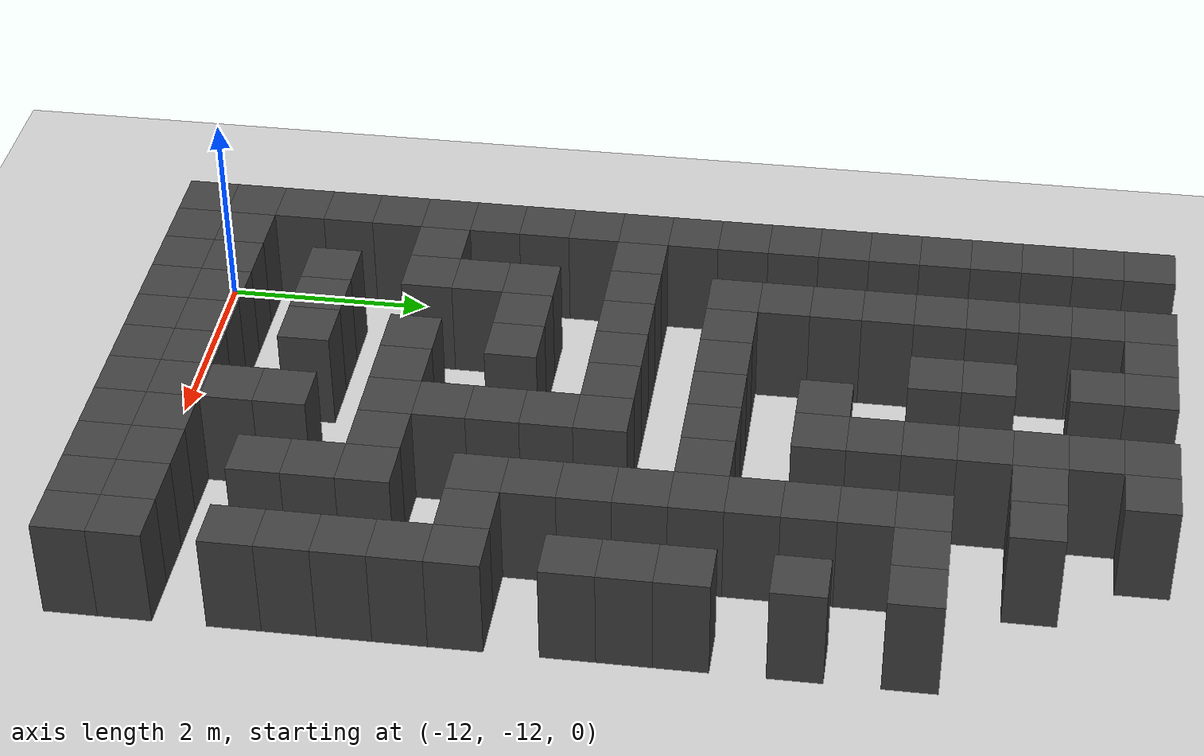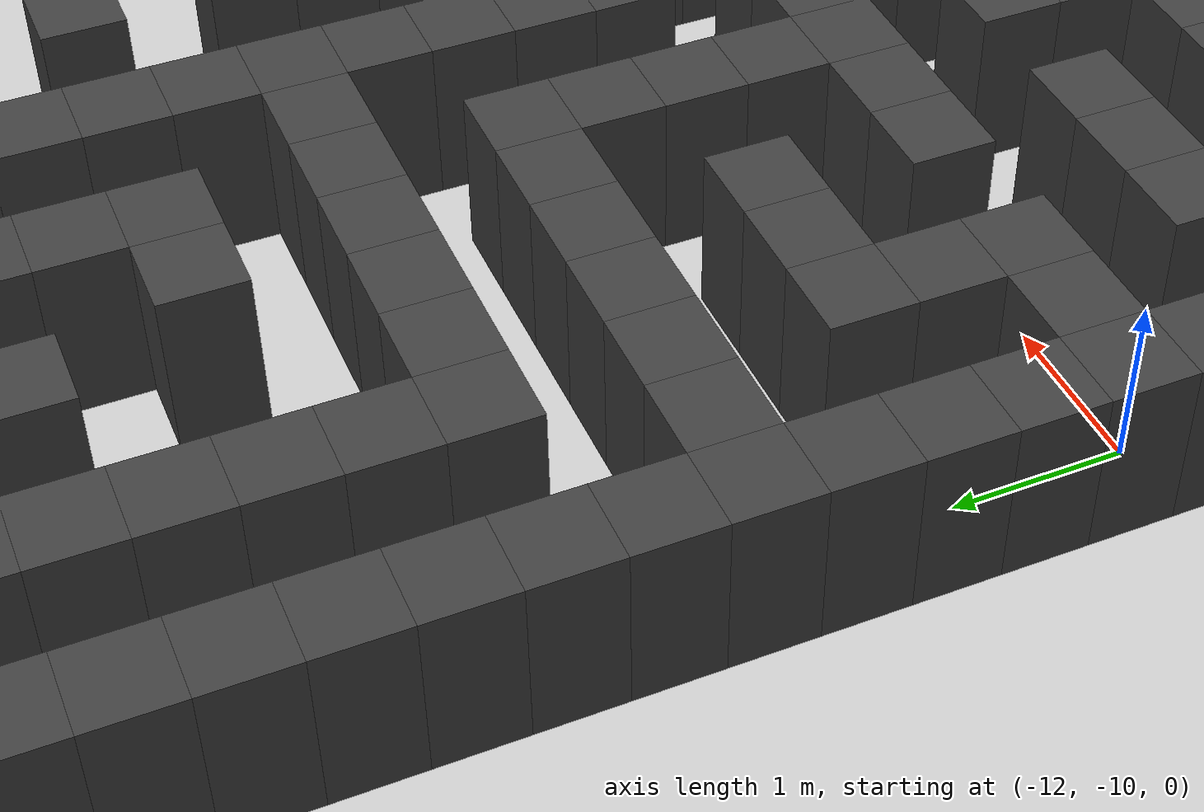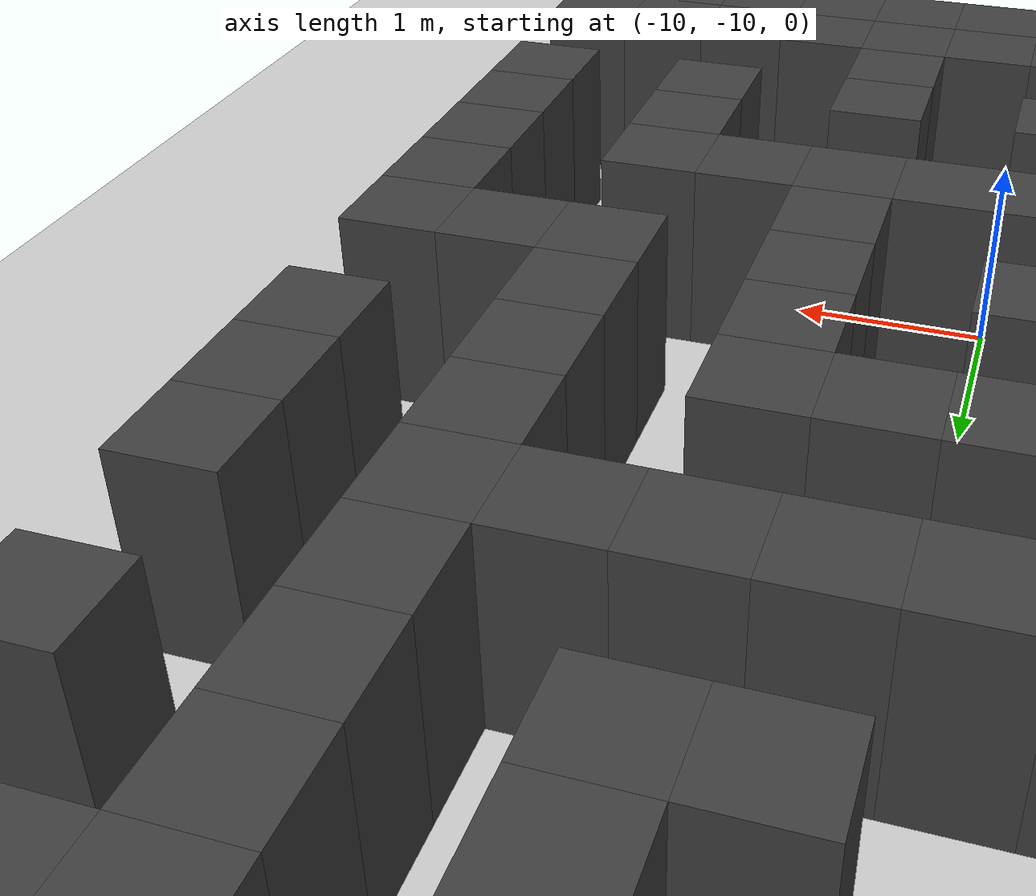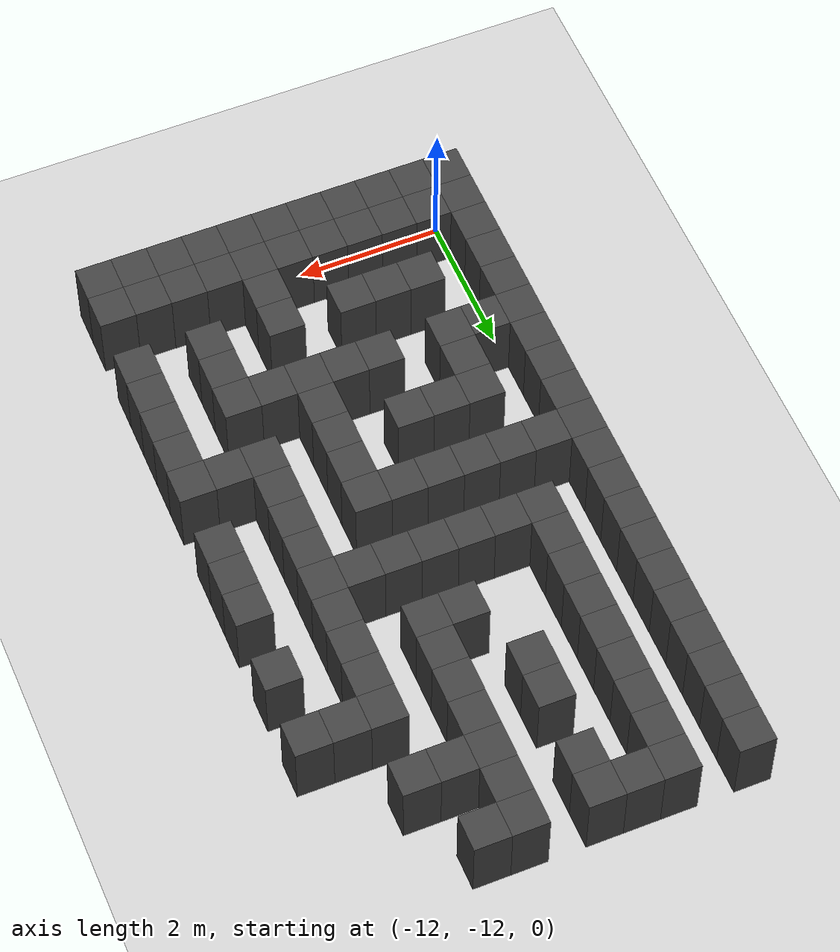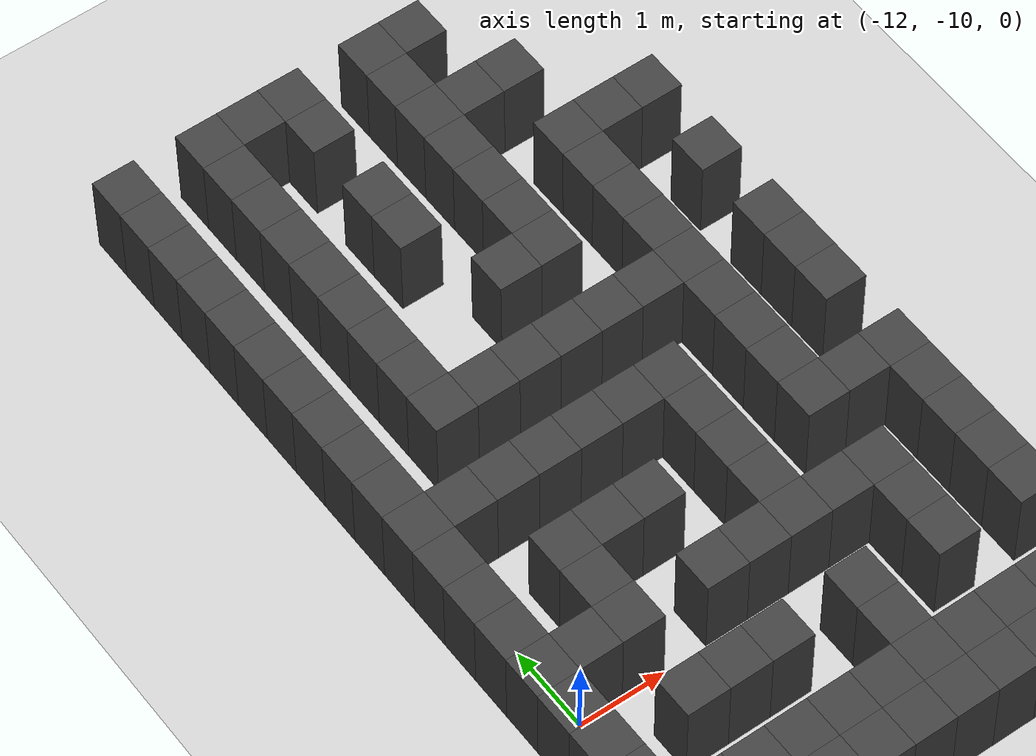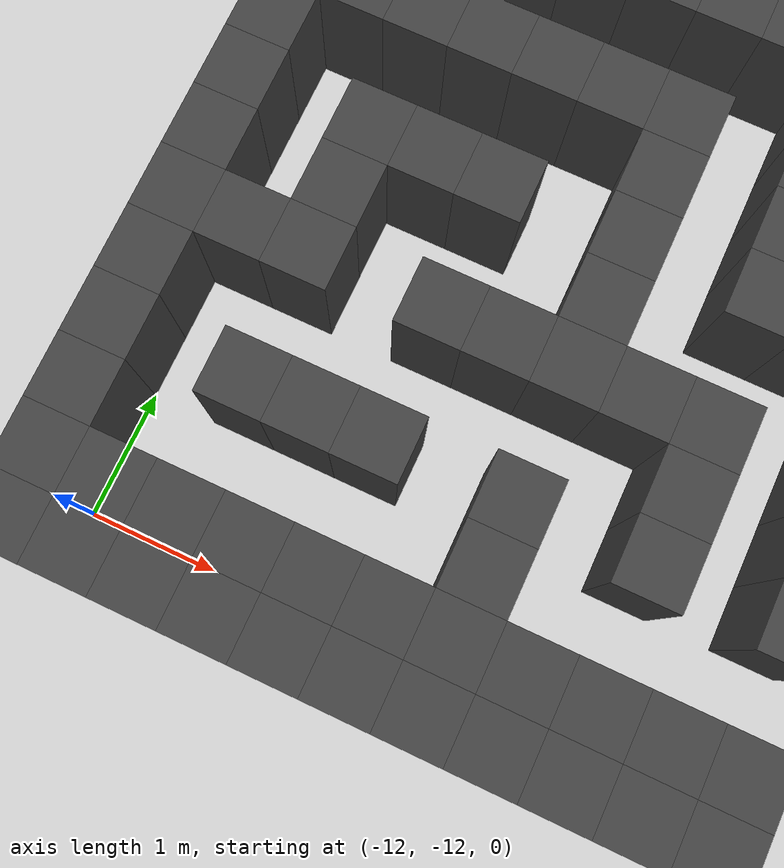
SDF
<sdf version="1.7">
 <world name="map_18814">
  <model name="ground_plane">
   <static>true</static>
   <link name="link">
    <collision name="collision">
     <geometry><plane><normal>0 0 1</normal><size>200 200</size></plane></geometry>
    </collision>
    <visual name="visual">
     <geometry><plane><normal>0 0 1</normal><size>200 200</size></plane></geometry>
     <material><ambient>0.8 0.8 0.8 1</ambient><diffuse>0.8 0.8 0.8 1</diffuse></material>
    </visual>
   </link>
  </model>
  <model name="maze_environment">
   <static>true</static>
   <link name="wall_763">
    <pose>-12.250 -2.750 0.500 0 0 0</pose>
    <collision name="col"><geometry><box><size>0.5 0.5 1.0</size></box></geometry></collision>
    <visual name="vis">
     <geometry><box><size>0.5 0.5 1.0</size></box></geometry>
     <material><ambient>0.15 0.15 0.15 1</ambient><diffuse>0.25 0.25 0.25 1</diffuse></material>
    </visual>
   </link>
   <link name="wall_764">
    <pose>-11.250 -2.750 0.500 0 0 0</pose>
    <collision name="col"><geometry><box><size>0.5 0.5 1.0</size></box></geometry></collision>
    <visual name="vis">
     <geometry><box><size>0.5 0.5 1.0</size></box></geometry>
     <material><ambient>0.15 0.15 0.15 1</ambient><diffuse>0.25 0.25 0.25 1</diffuse></material>
    </visual>
   </link>
   <link name="wall_765">
    <pose>-10.750 -2.750 0.500 0 0 0</pose>
    <collision name="col"><geometry><box><size>0.5 0.5 1.0</size></box></geometry></collision>
    <visual name="vis">
     <geometry><box><size>0.5 0.5 1.0</size></box></geometry>
     <material><ambient>0.15 0.15 0.15 1</ambient><diffuse>0.25 0.25 0.25 1</diffuse></material>
    </visual>
   </link>
   <link name="wall_766">
    <pose>-10.250 -2.750 0.500 0 0 0</pose>
    <collision name="col"><geometry><box><size>0.5 0.5 1.0</size></box></geometry></collision>
    <visual name="vis">
     <geometry><box><size>0.5 0.5 1.0</size></box></geometry>
     <material><ambient>0.15 0.15 0.15 1</ambient><diffuse>0.25 0.25 0.25 1</diffuse></material>
    </visual>
   </link>
   <link name="wall_767">
    <pose>-9.250 -2.750 0.500 0 0 0</pose>
    <collision name="col"><geometry><box><size>0.5 0.5 1.0</size></box></geometry></collision>
    <visual name="vis">
     <geometry><box><size>0.5 0.5 1.0</size></box></geometry>
     <material><ambient>0.15 0.15 0.15 1</ambient><diffuse>0.25 0.25 0.25 1</diffuse></material>
    </visual>
   </link>
   <link name="wall_768">
    <pose>-8.750 -2.750 0.500 0 0 0</pose>
    <collision name="col"><geometry><box><size>0.5 0.5 1.0</size></box></geometry></collision>
    <visual name="vis">
     <geometry><box><size>0.5 0.5 1.0</size></box></geometry>
     <material><ambient>0.15 0.15 0.15 1</ambient><diffuse>0.25 0.25 0.25 1</diffuse></material>
    </visual>
   </link>
   <link name="wall_799">
    <pose>-12.250 -3.250 0.500 0 0 0</pose>
    <collision name="col"><geometry><box><size>0.5 0.5 1.0</size></box></geometry></collision>
    <visual name="vis">
     <geometry><box><size>0.5 0.5 1.0</size></box></geometry>
     <material><ambient>0.15 0.15 0.15 1</ambient><diffuse>0.25 0.25 0.25 1</diffuse></material>
    </visual>
   </link>
   <link name="wall_800">
    <pose>-11.250 -3.250 0.500 0 0 0</pose>
    <collision name="col"><geometry><box><size>0.5 0.5 1.0</size></box></geometry></collision>
    <visual name="vis">
     <geometry><box><size>0.5 0.5 1.0</size></box></geometry>
     <material><ambient>0.15 0.15 0.15 1</ambient><diffuse>0.25 0.25 0.25 1</diffuse></material>
    </visual>
   </link>
   <link name="wall_801">
    <pose>-10.250 -3.250 0.500 0 0 0</pose>
    <collision name="col"><geometry><box><size>0.5 0.5 1.0</size></box></geometry></collision>
    <visual name="vis">
     <geometry><box><size>0.5 0.5 1.0</size></box></geometry>
     <material><ambient>0.15 0.15 0.15 1</ambient><diffuse>0.25 0.25 0.25 1</diffuse></material>
    </visual>
   </link>
   <link name="wall_802">
    <pose>-9.250 -3.250 0.500 0 0 0</pose>
    <collision name="col"><geometry><box><size>0.5 0.5 1.0</size></box></geometry></collision>
    <visual name="vis">
     <geometry><box><size>0.5 0.5 1.0</size></box></geometry>
     <material><ambient>0.15 0.15 0.15 1</ambient><diffuse>0.25 0.25 0.25 1</diffuse></material>
    </visual>
   </link>
   <link name="wall_814">
    <pose>-12.250 -3.750 0.500 0 0 0</pose>
    <collision name="col"><geometry><box><size>0.5 0.5 1.0</size></box></geometry></collision>
    <visual name="vis">
     <geometry><box><size>0.5 0.5 1.0</size></box></geometry>
     <material><ambient>0.15 0.15 0.15 1</ambient><diffuse>0.25 0.25 0.25 1</diffuse></material>
    </visual>
   </link>
   <link name="wall_815">
    <pose>-11.250 -3.750 0.500 0 0 0</pose>
    <collision name="col"><geometry><box><size>0.5 0.5 1.0</size></box></geometry></collision>
    <visual name="vis">
     <geometry><box><size>0.5 0.5 1.0</size></box></geometry>
     <material><ambient>0.15 0.15 0.15 1</ambient><diffuse>0.25 0.25 0.25 1</diffuse></material>
    </visual>
   </link>
   <link name="wall_816">
    <pose>-9.250 -3.750 0.500 0 0 0</pose>
    <collision name="col"><geometry><box><size>0.5 0.5 1.0</size></box></geometry></collision>
    <visual name="vis">
     <geometry><box><size>0.5 0.5 1.0</size></box></geometry>
     <material><ambient>0.15 0.15 0.15 1</ambient><diffuse>0.25 0.25 0.25 1</diffuse></material>
    </visual>
   </link>
   <link name="wall_817">
    <pose>-8.750 -3.750 0.500 0 0 0</pose>
    <collision name="col"><geometry><box><size>0.5 0.5 1.0</size></box></geometry></collision>
    <visual name="vis">
     <geometry><box><size>0.5 0.5 1.0</size></box></geometry>
     <material><ambient>0.15 0.15 0.15 1</ambient><diffuse>0.25 0.25 0.25 1</diffuse></material>
    </visual>
   </link>
   <link name="wall_818">
    <pose>-8.250 -3.750 0.500 0 0 0</pose>
    <collision name="col"><geometry><box><size>0.5 0.5 1.0</size></box></geometry></collision>
    <visual name="vis">
     <geometry><box><size>0.5 0.5 1.0</size></box></geometry>
     <material><ambient>0.15 0.15 0.15 1</ambient><diffuse>0.25 0.25 0.25 1</diffuse></material>
    </visual>
   </link>
   <link name="wall_848">
    <pose>-12.250 -4.250 0.500 0 0 0</pose>
    <collision name="col"><geometry><box><size>0.5 0.5 1.0</size></box></geometry></collision>
    <visual name="vis">
     <geometry><box><size>0.5 0.5 1.0</size></box></geometry>
     <material><ambient>0.15 0.15 0.15 1</ambient><diffuse>0.25 0.25 0.25 1</diffuse></material>
    </visual>
   </link>
   <link name="wall_849">
    <pose>-11.250 -4.250 0.500 0 0 0</pose>
    <collision name="col"><geometry><box><size>0.5 0.5 1.0</size></box></geometry></collision>
    <visual name="vis">
     <geometry><box><size>0.5 0.5 1.0</size></box></geometry>
     <material><ambient>0.15 0.15 0.15 1</ambient><diffuse>0.25 0.25 0.25 1</diffuse></material>
    </visual>
   </link>
   <link name="wall_850">
    <pose>-10.250 -4.250 0.500 0 0 0</pose>
    <collision name="col"><geometry><box><size>0.5 0.5 1.0</size></box></geometry></collision>
    <visual name="vis">
     <geometry><box><size>0.5 0.5 1.0</size></box></geometry>
     <material><ambient>0.15 0.15 0.15 1</ambient><diffuse>0.25 0.25 0.25 1</diffuse></material>
    </visual>
   </link>
   <link name="wall_851">
    <pose>-9.250 -4.250 0.500 0 0 0</pose>
    <collision name="col"><geometry><box><size>0.5 0.5 1.0</size></box></geometry></collision>
    <visual name="vis">
     <geometry><box><size>0.5 0.5 1.0</size></box></geometry>
     <material><ambient>0.15 0.15 0.15 1</ambient><diffuse>0.25 0.25 0.25 1</diffuse></material>
    </visual>
   </link>
   <link name="wall_865">
    <pose>-12.250 -4.750 0.500 0 0 0</pose>
    <collision name="col"><geometry><box><size>0.5 0.5 1.0</size></box></geometry></collision>
    <visual name="vis">
     <geometry><box><size>0.5 0.5 1.0</size></box></geometry>
     <material><ambient>0.15 0.15 0.15 1</ambient><diffuse>0.25 0.25 0.25 1</diffuse></material>
    </visual>
   </link>
   <link name="wall_866">
    <pose>-11.250 -4.750 0.500 0 0 0</pose>
    <collision name="col"><geometry><box><size>0.5 0.5 1.0</size></box></geometry></collision>
    <visual name="vis">
     <geometry><box><size>0.5 0.5 1.0</size></box></geometry>
     <material><ambient>0.15 0.15 0.15 1</ambient><diffuse>0.25 0.25 0.25 1</diffuse></material>
    </visual>
   </link>
   <link name="wall_867">
    <pose>-10.250 -4.750 0.500 0 0 0</pose>
    <collision name="col"><geometry><box><size>0.5 0.5 1.0</size></box></geometry></collision>
    <visual name="vis">
     <geometry><box><size>0.5 0.5 1.0</size></box></geometry>
     <material><ambient>0.15 0.15 0.15 1</ambient><diffuse>0.25 0.25 0.25 1</diffuse></material>
    </visual>
   </link>
   <link name="wall_868">
    <pose>-9.250 -4.750 0.500 0 0 0</pose>
    <collision name="col"><geometry><box><size>0.5 0.5 1.0</size></box></geometry></collision>
    <visual name="vis">
     <geometry><box><size>0.5 0.5 1.0</size></box></geometry>
     <material><ambient>0.15 0.15 0.15 1</ambient><diffuse>0.25 0.25 0.25 1</diffuse></material>
    </visual>
   </link>
   <link name="wall_869">
    <pose>-8.250 -4.750 0.500 0 0 0</pose>
    <collision name="col"><geometry><box><size>0.5 0.5 1.0</size></box></geometry></collision>
    <visual name="vis">
     <geometry><box><size>0.5 0.5 1.0</size></box></geometry>
     <material><ambient>0.15 0.15 0.15 1</ambient><diffuse>0.25 0.25 0.25 1</diffuse></material>
    </visual>
   </link>
   <link name="wall_870">
    <pose>-7.750 -4.750 0.500 0 0 0</pose>
    <collision name="col"><geometry><box><size>0.5 0.5 1.0</size></box></geometry></collision>
    <visual name="vis">
     <geometry><box><size>0.5 0.5 1.0</size></box></geometry>
     <material><ambient>0.15 0.15 0.15 1</ambient><diffuse>0.25 0.25 0.25 1</diffuse></material>
    </visual>
   </link>
   <link name="wall_871">
    <pose>-7.250 -4.750 0.500 0 0 0</pose>
    <collision name="col"><geometry><box><size>0.5 0.5 1.0</size></box></geometry></collision>
    <visual name="vis">
     <geometry><box><size>0.5 0.5 1.0</size></box></geometry>
     <material><ambient>0.15 0.15 0.15 1</ambient><diffuse>0.25 0.25 0.25 1</diffuse></material>
    </visual>
   </link>
   <link name="wall_899">
    <pose>-12.250 -5.250 0.500 0 0 0</pose>
    <collision name="col"><geometry><box><size>0.5 0.5 1.0</size></box></geometry></collision>
    <visual name="vis">
     <geometry><box><size>0.5 0.5 1.0</size></box></geometry>
     <material><ambient>0.15 0.15 0.15 1</ambient><diffuse>0.25 0.25 0.25 1</diffuse></material>
    </visual>
   </link>
   <link name="wall_900">
    <pose>-11.250 -5.250 0.500 0 0 0</pose>
    <collision name="col"><geometry><box><size>0.5 0.5 1.0</size></box></geometry></collision>
    <visual name="vis">
     <geometry><box><size>0.5 0.5 1.0</size></box></geometry>
     <material><ambient>0.15 0.15 0.15 1</ambient><diffuse>0.25 0.25 0.25 1</diffuse></material>
    </visual>
   </link>
   <link name="wall_901">
    <pose>-9.250 -5.250 0.500 0 0 0</pose>
    <collision name="col"><geometry><box><size>0.5 0.5 1.0</size></box></geometry></collision>
    <visual name="vis">
     <geometry><box><size>0.5 0.5 1.0</size></box></geometry>
     <material><ambient>0.15 0.15 0.15 1</ambient><diffuse>0.25 0.25 0.25 1</diffuse></material>
    </visual>
   </link>
   <link name="wall_902">
    <pose>-8.250 -5.250 0.500 0 0 0</pose>
    <collision name="col"><geometry><box><size>0.5 0.5 1.0</size></box></geometry></collision>
    <visual name="vis">
     <geometry><box><size>0.5 0.5 1.0</size></box></geometry>
     <material><ambient>0.15 0.15 0.15 1</ambient><diffuse>0.25 0.25 0.25 1</diffuse></material>
    </visual>
   </link>
   <link name="wall_915">
    <pose>-12.250 -5.750 0.500 0 0 0</pose>
    <collision name="col"><geometry><box><size>0.5 0.5 1.0</size></box></geometry></collision>
    <visual name="vis">
     <geometry><box><size>0.5 0.5 1.0</size></box></geometry>
     <material><ambient>0.15 0.15 0.15 1</ambient><diffuse>0.25 0.25 0.25 1</diffuse></material>
    </visual>
   </link>
   <link name="wall_916">
    <pose>-11.250 -5.750 0.500 0 0 0</pose>
    <collision name="col"><geometry><box><size>0.5 0.5 1.0</size></box></geometry></collision>
    <visual name="vis">
     <geometry><box><size>0.5 0.5 1.0</size></box></geometry>
     <material><ambient>0.15 0.15 0.15 1</ambient><diffuse>0.25 0.25 0.25 1</diffuse></material>
    </visual>
   </link>
   <link name="wall_917">
    <pose>-9.750 -5.750 0.500 0 0 0</pose>
    <collision name="col"><geometry><box><size>0.5 0.5 1.0</size></box></geometry></collision>
    <visual name="vis">
     <geometry><box><size>0.5 0.5 1.0</size></box></geometry>
     <material><ambient>0.15 0.15 0.15 1</ambient><diffuse>0.25 0.25 0.25 1</diffuse></material>
    </visual>
   </link>
   <link name="wall_918">
    <pose>-9.250 -5.750 0.500 0 0 0</pose>
    <collision name="col"><geometry><box><size>0.5 0.5 1.0</size></box></geometry></collision>
    <visual name="vis">
     <geometry><box><size>0.5 0.5 1.0</size></box></geometry>
     <material><ambient>0.15 0.15 0.15 1</ambient><diffuse>0.25 0.25 0.25 1</diffuse></material>
    </visual>
   </link>
   <link name="wall_919">
    <pose>-8.250 -5.750 0.500 0 0 0</pose>
    <collision name="col"><geometry><box><size>0.5 0.5 1.0</size></box></geometry></collision>
    <visual name="vis">
     <geometry><box><size>0.5 0.5 1.0</size></box></geometry>
     <material><ambient>0.15 0.15 0.15 1</ambient><diffuse>0.25 0.25 0.25 1</diffuse></material>
    </visual>
   </link>
   <link name="wall_920">
    <pose>-7.250 -5.750 0.500 0 0 0</pose>
    <collision name="col"><geometry><box><size>0.5 0.5 1.0</size></box></geometry></collision>
    <visual name="vis">
     <geometry><box><size>0.5 0.5 1.0</size></box></geometry>
     <material><ambient>0.15 0.15 0.15 1</ambient><diffuse>0.25 0.25 0.25 1</diffuse></material>
    </visual>
   </link>
   <link name="wall_951">
    <pose>-12.250 -6.250 0.500 0 0 0</pose>
    <collision name="col"><geometry><box><size>0.5 0.5 1.0</size></box></geometry></collision>
    <visual name="vis">
     <geometry><box><size>0.5 0.5 1.0</size></box></geometry>
     <material><ambient>0.15 0.15 0.15 1</ambient><diffuse>0.25 0.25 0.25 1</diffuse></material>
    </visual>
   </link>
   <link name="wall_952">
    <pose>-11.250 -6.250 0.500 0 0 0</pose>
    <collision name="col"><geometry><box><size>0.5 0.5 1.0</size></box></geometry></collision>
    <visual name="vis">
     <geometry><box><size>0.5 0.5 1.0</size></box></geometry>
     <material><ambient>0.15 0.15 0.15 1</ambient><diffuse>0.25 0.25 0.25 1</diffuse></material>
    </visual>
   </link>
   <link name="wall_953">
    <pose>-8.250 -6.250 0.500 0 0 0</pose>
    <collision name="col"><geometry><box><size>0.5 0.5 1.0</size></box></geometry></collision>
    <visual name="vis">
     <geometry><box><size>0.5 0.5 1.0</size></box></geometry>
     <material><ambient>0.15 0.15 0.15 1</ambient><diffuse>0.25 0.25 0.25 1</diffuse></material>
    </visual>
   </link>
   <link name="wall_964">
    <pose>-12.250 -6.750 0.500 0 0 0</pose>
    <collision name="col"><geometry><box><size>0.5 0.5 1.0</size></box></geometry></collision>
    <visual name="vis">
     <geometry><box><size>0.5 0.5 1.0</size></box></geometry>
     <material><ambient>0.15 0.15 0.15 1</ambient><diffuse>0.25 0.25 0.25 1</diffuse></material>
    </visual>
   </link>
   <link name="wall_965">
    <pose>-11.250 -6.750 0.500 0 0 0</pose>
    <collision name="col"><geometry><box><size>0.5 0.5 1.0</size></box></geometry></collision>
    <visual name="vis">
     <geometry><box><size>0.5 0.5 1.0</size></box></geometry>
     <material><ambient>0.15 0.15 0.15 1</ambient><diffuse>0.25 0.25 0.25 1</diffuse></material>
    </visual>
   </link>
   <link name="wall_966">
    <pose>-10.750 -6.750 0.500 0 0 0</pose>
    <collision name="col"><geometry><box><size>0.5 0.5 1.0</size></box></geometry></collision>
    <visual name="vis">
     <geometry><box><size>0.5 0.5 1.0</size></box></geometry>
     <material><ambient>0.15 0.15 0.15 1</ambient><diffuse>0.25 0.25 0.25 1</diffuse></material>
    </visual>
   </link>
   <link name="wall_967">
    <pose>-10.250 -6.750 0.500 0 0 0</pose>
    <collision name="col"><geometry><box><size>0.5 0.5 1.0</size></box></geometry></collision>
    <visual name="vis">
     <geometry><box><size>0.5 0.5 1.0</size></box></geometry>
     <material><ambient>0.15 0.15 0.15 1</ambient><diffuse>0.25 0.25 0.25 1</diffuse></material>
    </visual>
   </link>
   <link name="wall_968">
    <pose>-9.750 -6.750 0.500 0 0 0</pose>
    <collision name="col"><geometry><box><size>0.5 0.5 1.0</size></box></geometry></collision>
    <visual name="vis">
     <geometry><box><size>0.5 0.5 1.0</size></box></geometry>
     <material><ambient>0.15 0.15 0.15 1</ambient><diffuse>0.25 0.25 0.25 1</diffuse></material>
    </visual>
   </link>
   <link name="wall_969">
    <pose>-9.250 -6.750 0.500 0 0 0</pose>
    <collision name="col"><geometry><box><size>0.5 0.5 1.0</size></box></geometry></collision>
    <visual name="vis">
     <geometry><box><size>0.5 0.5 1.0</size></box></geometry>
     <material><ambient>0.15 0.15 0.15 1</ambient><diffuse>0.25 0.25 0.25 1</diffuse></material>
    </visual>
   </link>
   <link name="wall_970">
    <pose>-8.750 -6.750 0.500 0 0 0</pose>
    <collision name="col"><geometry><box><size>0.5 0.5 1.0</size></box></geometry></collision>
    <visual name="vis">
     <geometry><box><size>0.5 0.5 1.0</size></box></geometry>
     <material><ambient>0.15 0.15 0.15 1</ambient><diffuse>0.25 0.25 0.25 1</diffuse></material>
    </visual>
   </link>
   <link name="wall_971">
    <pose>-8.250 -6.750 0.500 0 0 0</pose>
    <collision name="col"><geometry><box><size>0.5 0.5 1.0</size></box></geometry></collision>
    <visual name="vis">
     <geometry><box><size>0.5 0.5 1.0</size></box></geometry>
     <material><ambient>0.15 0.15 0.15 1</ambient><diffuse>0.25 0.25 0.25 1</diffuse></material>
    </visual>
   </link>
   <link name="wall_972">
    <pose>-7.250 -6.750 0.500 0 0 0</pose>
    <collision name="col"><geometry><box><size>0.5 0.5 1.0</size></box></geometry></collision>
    <visual name="vis">
     <geometry><box><size>0.5 0.5 1.0</size></box></geometry>
     <material><ambient>0.15 0.15 0.15 1</ambient><diffuse>0.25 0.25 0.25 1</diffuse></material>
    </visual>
   </link>
   <link name="wall_1002">
    <pose>-12.250 -7.250 0.500 0 0 0</pose>
    <collision name="col"><geometry><box><size>0.5 0.5 1.0</size></box></geometry></collision>
    <visual name="vis">
     <geometry><box><size>0.5 0.5 1.0</size></box></geometry>
     <material><ambient>0.15 0.15 0.15 1</ambient><diffuse>0.25 0.25 0.25 1</diffuse></material>
    </visual>
   </link>
   <link name="wall_1003">
    <pose>-8.250 -7.250 0.500 0 0 0</pose>
    <collision name="col"><geometry><box><size>0.5 0.5 1.0</size></box></geometry></collision>
    <visual name="vis">
     <geometry><box><size>0.5 0.5 1.0</size></box></geometry>
     <material><ambient>0.15 0.15 0.15 1</ambient><diffuse>0.25 0.25 0.25 1</diffuse></material>
    </visual>
   </link>
   <link name="wall_1004">
    <pose>-7.250 -7.250 0.500 0 0 0</pose>
    <collision name="col"><geometry><box><size>0.5 0.5 1.0</size></box></geometry></collision>
    <visual name="vis">
     <geometry><box><size>0.5 0.5 1.0</size></box></geometry>
     <material><ambient>0.15 0.15 0.15 1</ambient><diffuse>0.25 0.25 0.25 1</diffuse></material>
    </visual>
   </link>
   <link name="wall_1014">
    <pose>-12.250 -7.750 0.500 0 0 0</pose>
    <collision name="col"><geometry><box><size>0.5 0.5 1.0</size></box></geometry></collision>
    <visual name="vis">
     <geometry><box><size>0.5 0.5 1.0</size></box></geometry>
     <material><ambient>0.15 0.15 0.15 1</ambient><diffuse>0.25 0.25 0.25 1</diffuse></material>
    </visual>
   </link>
   <link name="wall_1015">
    <pose>-11.750 -7.750 0.500 0 0 0</pose>
    <collision name="col"><geometry><box><size>0.5 0.5 1.0</size></box></geometry></collision>
    <visual name="vis">
     <geometry><box><size>0.5 0.5 1.0</size></box></geometry>
     <material><ambient>0.15 0.15 0.15 1</ambient><diffuse>0.25 0.25 0.25 1</diffuse></material>
    </visual>
   </link>
   <link name="wall_1016">
    <pose>-11.250 -7.750 0.500 0 0 0</pose>
    <collision name="col"><geometry><box><size>0.5 0.5 1.0</size></box></geometry></collision>
    <visual name="vis">
     <geometry><box><size>0.5 0.5 1.0</size></box></geometry>
     <material><ambient>0.15 0.15 0.15 1</ambient><diffuse>0.25 0.25 0.25 1</diffuse></material>
    </visual>
   </link>
   <link name="wall_1017">
    <pose>-10.750 -7.750 0.500 0 0 0</pose>
    <collision name="col"><geometry><box><size>0.5 0.5 1.0</size></box></geometry></collision>
    <visual name="vis">
     <geometry><box><size>0.5 0.5 1.0</size></box></geometry>
     <material><ambient>0.15 0.15 0.15 1</ambient><diffuse>0.25 0.25 0.25 1</diffuse></material>
    </visual>
   </link>
   <link name="wall_1018">
    <pose>-10.250 -7.750 0.500 0 0 0</pose>
    <collision name="col"><geometry><box><size>0.5 0.5 1.0</size></box></geometry></collision>
    <visual name="vis">
     <geometry><box><size>0.5 0.5 1.0</size></box></geometry>
     <material><ambient>0.15 0.15 0.15 1</ambient><diffuse>0.25 0.25 0.25 1</diffuse></material>
    </visual>
   </link>
   <link name="wall_1019">
    <pose>-9.750 -7.750 0.500 0 0 0</pose>
    <collision name="col"><geometry><box><size>0.5 0.5 1.0</size></box></geometry></collision>
    <visual name="vis">
     <geometry><box><size>0.5 0.5 1.0</size></box></geometry>
     <material><ambient>0.15 0.15 0.15 1</ambient><diffuse>0.25 0.25 0.25 1</diffuse></material>
    </visual>
   </link>
   <link name="wall_1020">
    <pose>-9.250 -7.750 0.500 0 0 0</pose>
    <collision name="col"><geometry><box><size>0.5 0.5 1.0</size></box></geometry></collision>
    <visual name="vis">
     <geometry><box><size>0.5 0.5 1.0</size></box></geometry>
     <material><ambient>0.15 0.15 0.15 1</ambient><diffuse>0.25 0.25 0.25 1</diffuse></material>
    </visual>
   </link>
   <link name="wall_1021">
    <pose>-8.250 -7.750 0.500 0 0 0</pose>
    <collision name="col"><geometry><box><size>0.5 0.5 1.0</size></box></geometry></collision>
    <visual name="vis">
     <geometry><box><size>0.5 0.5 1.0</size></box></geometry>
     <material><ambient>0.15 0.15 0.15 1</ambient><diffuse>0.25 0.25 0.25 1</diffuse></material>
    </visual>
   </link>
   <link name="wall_1022">
    <pose>-7.250 -7.750 0.500 0 0 0</pose>
    <collision name="col"><geometry><box><size>0.5 0.5 1.0</size></box></geometry></collision>
    <visual name="vis">
     <geometry><box><size>0.5 0.5 1.0</size></box></geometry>
     <material><ambient>0.15 0.15 0.15 1</ambient><diffuse>0.25 0.25 0.25 1</diffuse></material>
    </visual>
   </link>
   <link name="wall_1050">
    <pose>-12.250 -8.250 0.500 0 0 0</pose>
    <collision name="col"><geometry><box><size>0.5 0.5 1.0</size></box></geometry></collision>
    <visual name="vis">
     <geometry><box><size>0.5 0.5 1.0</size></box></geometry>
     <material><ambient>0.15 0.15 0.15 1</ambient><diffuse>0.25 0.25 0.25 1</diffuse></material>
    </visual>
   </link>
   <link name="wall_1051">
    <pose>-9.250 -8.250 0.500 0 0 0</pose>
    <collision name="col"><geometry><box><size>0.5 0.5 1.0</size></box></geometry></collision>
    <visual name="vis">
     <geometry><box><size>0.5 0.5 1.0</size></box></geometry>
     <material><ambient>0.15 0.15 0.15 1</ambient><diffuse>0.25 0.25 0.25 1</diffuse></material>
    </visual>
   </link>
   <link name="wall_1052">
    <pose>-8.250 -8.250 0.500 0 0 0</pose>
    <collision name="col"><geometry><box><size>0.5 0.5 1.0</size></box></geometry></collision>
    <visual name="vis">
     <geometry><box><size>0.5 0.5 1.0</size></box></geometry>
     <material><ambient>0.15 0.15 0.15 1</ambient><diffuse>0.25 0.25 0.25 1</diffuse></material>
    </visual>
   </link>
   <link name="wall_1067">
    <pose>-12.250 -8.750 0.500 0 0 0</pose>
    <collision name="col"><geometry><box><size>0.5 0.5 1.0</size></box></geometry></collision>
    <visual name="vis">
     <geometry><box><size>0.5 0.5 1.0</size></box></geometry>
     <material><ambient>0.15 0.15 0.15 1</ambient><diffuse>0.25 0.25 0.25 1</diffuse></material>
    </visual>
   </link>
   <link name="wall_1068">
    <pose>-11.250 -8.750 0.500 0 0 0</pose>
    <collision name="col"><geometry><box><size>0.5 0.5 1.0</size></box></geometry></collision>
    <visual name="vis">
     <geometry><box><size>0.5 0.5 1.0</size></box></geometry>
     <material><ambient>0.15 0.15 0.15 1</ambient><diffuse>0.25 0.25 0.25 1</diffuse></material>
    </visual>
   </link>
   <link name="wall_1069">
    <pose>-10.750 -8.750 0.500 0 0 0</pose>
    <collision name="col"><geometry><box><size>0.5 0.5 1.0</size></box></geometry></collision>
    <visual name="vis">
     <geometry><box><size>0.5 0.5 1.0</size></box></geometry>
     <material><ambient>0.15 0.15 0.15 1</ambient><diffuse>0.25 0.25 0.25 1</diffuse></material>
    </visual>
   </link>
   <link name="wall_1070">
    <pose>-10.250 -8.750 0.500 0 0 0</pose>
    <collision name="col"><geometry><box><size>0.5 0.5 1.0</size></box></geometry></collision>
    <visual name="vis">
     <geometry><box><size>0.5 0.5 1.0</size></box></geometry>
     <material><ambient>0.15 0.15 0.15 1</ambient><diffuse>0.25 0.25 0.25 1</diffuse></material>
    </visual>
   </link>
   <link name="wall_1071">
    <pose>-9.250 -8.750 0.500 0 0 0</pose>
    <collision name="col"><geometry><box><size>0.5 0.5 1.0</size></box></geometry></collision>
    <visual name="vis">
     <geometry><box><size>0.5 0.5 1.0</size></box></geometry>
     <material><ambient>0.15 0.15 0.15 1</ambient><diffuse>0.25 0.25 0.25 1</diffuse></material>
    </visual>
   </link>
   <link name="wall_1072">
    <pose>-8.250 -8.750 0.500 0 0 0</pose>
    <collision name="col"><geometry><box><size>0.5 0.5 1.0</size></box></geometry></collision>
    <visual name="vis">
     <geometry><box><size>0.5 0.5 1.0</size></box></geometry>
     <material><ambient>0.15 0.15 0.15 1</ambient><diffuse>0.25 0.25 0.25 1</diffuse></material>
    </visual>
   </link>
   <link name="wall_1073">
    <pose>-7.750 -8.750 0.500 0 0 0</pose>
    <collision name="col"><geometry><box><size>0.5 0.5 1.0</size></box></geometry></collision>
    <visual name="vis">
     <geometry><box><size>0.5 0.5 1.0</size></box></geometry>
     <material><ambient>0.15 0.15 0.15 1</ambient><diffuse>0.25 0.25 0.25 1</diffuse></material>
    </visual>
   </link>
   <link name="wall_1074">
    <pose>-7.250 -8.750 0.500 0 0 0</pose>
    <collision name="col"><geometry><box><size>0.5 0.5 1.0</size></box></geometry></collision>
    <visual name="vis">
     <geometry><box><size>0.5 0.5 1.0</size></box></geometry>
     <material><ambient>0.15 0.15 0.15 1</ambient><diffuse>0.25 0.25 0.25 1</diffuse></material>
    </visual>
   </link>
   <link name="wall_1100">
    <pose>-12.250 -9.250 0.500 0 0 0</pose>
    <collision name="col"><geometry><box><size>0.5 0.5 1.0</size></box></geometry></collision>
    <visual name="vis">
     <geometry><box><size>0.5 0.5 1.0</size></box></geometry>
     <material><ambient>0.15 0.15 0.15 1</ambient><diffuse>0.25 0.25 0.25 1</diffuse></material>
    </visual>
   </link>
   <link name="wall_1101">
    <pose>-11.250 -9.250 0.500 0 0 0</pose>
    <collision name="col"><geometry><box><size>0.5 0.5 1.0</size></box></geometry></collision>
    <visual name="vis">
     <geometry><box><size>0.5 0.5 1.0</size></box></geometry>
     <material><ambient>0.15 0.15 0.15 1</ambient><diffuse>0.25 0.25 0.25 1</diffuse></material>
    </visual>
   </link>
   <link name="wall_1102">
    <pose>-9.250 -9.250 0.500 0 0 0</pose>
    <collision name="col"><geometry><box><size>0.5 0.5 1.0</size></box></geometry></collision>
    <visual name="vis">
     <geometry><box><size>0.5 0.5 1.0</size></box></geometry>
     <material><ambient>0.15 0.15 0.15 1</ambient><diffuse>0.25 0.25 0.25 1</diffuse></material>
    </visual>
   </link>
   <link name="wall_1103">
    <pose>-7.250 -9.250 0.500 0 0 0</pose>
    <collision name="col"><geometry><box><size>0.5 0.5 1.0</size></box></geometry></collision>
    <visual name="vis">
     <geometry><box><size>0.5 0.5 1.0</size></box></geometry>
     <material><ambient>0.15 0.15 0.15 1</ambient><diffuse>0.25 0.25 0.25 1</diffuse></material>
    </visual>
   </link>
   <link name="wall_1117">
    <pose>-12.250 -9.750 0.500 0 0 0</pose>
    <collision name="col"><geometry><box><size>0.5 0.5 1.0</size></box></geometry></collision>
    <visual name="vis">
     <geometry><box><size>0.5 0.5 1.0</size></box></geometry>
     <material><ambient>0.15 0.15 0.15 1</ambient><diffuse>0.25 0.25 0.25 1</diffuse></material>
    </visual>
   </link>
   <link name="wall_1118">
    <pose>-11.750 -9.750 0.500 0 0 0</pose>
    <collision name="col"><geometry><box><size>0.5 0.5 1.0</size></box></geometry></collision>
    <visual name="vis">
     <geometry><box><size>0.5 0.5 1.0</size></box></geometry>
     <material><ambient>0.15 0.15 0.15 1</ambient><diffuse>0.25 0.25 0.25 1</diffuse></material>
    </visual>
   </link>
   <link name="wall_1119">
    <pose>-11.250 -9.750 0.500 0 0 0</pose>
    <collision name="col"><geometry><box><size>0.5 0.5 1.0</size></box></geometry></collision>
    <visual name="vis">
     <geometry><box><size>0.5 0.5 1.0</size></box></geometry>
     <material><ambient>0.15 0.15 0.15 1</ambient><diffuse>0.25 0.25 0.25 1</diffuse></material>
    </visual>
   </link>
   <link name="wall_1120">
    <pose>-10.250 -9.750 0.500 0 0 0</pose>
    <collision name="col"><geometry><box><size>0.5 0.5 1.0</size></box></geometry></collision>
    <visual name="vis">
     <geometry><box><size>0.5 0.5 1.0</size></box></geometry>
     <material><ambient>0.15 0.15 0.15 1</ambient><diffuse>0.25 0.25 0.25 1</diffuse></material>
    </visual>
   </link>
   <link name="wall_1121">
    <pose>-9.750 -9.750 0.500 0 0 0</pose>
    <collision name="col"><geometry><box><size>0.5 0.5 1.0</size></box></geometry></collision>
    <visual name="vis">
     <geometry><box><size>0.5 0.5 1.0</size></box></geometry>
     <material><ambient>0.15 0.15 0.15 1</ambient><diffuse>0.25 0.25 0.25 1</diffuse></material>
    </visual>
   </link>
   <link name="wall_1122">
    <pose>-9.250 -9.750 0.500 0 0 0</pose>
    <collision name="col"><geometry><box><size>0.5 0.5 1.0</size></box></geometry></collision>
    <visual name="vis">
     <geometry><box><size>0.5 0.5 1.0</size></box></geometry>
     <material><ambient>0.15 0.15 0.15 1</ambient><diffuse>0.25 0.25 0.25 1</diffuse></material>
    </visual>
   </link>
   <link name="wall_1123">
    <pose>-8.750 -9.750 0.500 0 0 0</pose>
    <collision name="col"><geometry><box><size>0.5 0.5 1.0</size></box></geometry></collision>
    <visual name="vis">
     <geometry><box><size>0.5 0.5 1.0</size></box></geometry>
     <material><ambient>0.15 0.15 0.15 1</ambient><diffuse>0.25 0.25 0.25 1</diffuse></material>
    </visual>
   </link>
   <link name="wall_1124">
    <pose>-8.250 -9.750 0.500 0 0 0</pose>
    <collision name="col"><geometry><box><size>0.5 0.5 1.0</size></box></geometry></collision>
    <visual name="vis">
     <geometry><box><size>0.5 0.5 1.0</size></box></geometry>
     <material><ambient>0.15 0.15 0.15 1</ambient><diffuse>0.25 0.25 0.25 1</diffuse></material>
    </visual>
   </link>
   <link name="wall_1125">
    <pose>-7.250 -9.750 0.500 0 0 0</pose>
    <collision name="col"><geometry><box><size>0.5 0.5 1.0</size></box></geometry></collision>
    <visual name="vis">
     <geometry><box><size>0.5 0.5 1.0</size></box></geometry>
     <material><ambient>0.15 0.15 0.15 1</ambient><diffuse>0.25 0.25 0.25 1</diffuse></material>
    </visual>
   </link>
   <link name="wall_1153">
    <pose>-12.250 -10.250 0.500 0 0 0</pose>
    <collision name="col"><geometry><box><size>0.5 0.5 1.0</size></box></geometry></collision>
    <visual name="vis">
     <geometry><box><size>0.5 0.5 1.0</size></box></geometry>
     <material><ambient>0.15 0.15 0.15 1</ambient><diffuse>0.25 0.25 0.25 1</diffuse></material>
    </visual>
   </link>
   <link name="wall_1154">
    <pose>-8.250 -10.250 0.500 0 0 0</pose>
    <collision name="col"><geometry><box><size>0.5 0.5 1.0</size></box></geometry></collision>
    <visual name="vis">
     <geometry><box><size>0.5 0.5 1.0</size></box></geometry>
     <material><ambient>0.15 0.15 0.15 1</ambient><diffuse>0.25 0.25 0.25 1</diffuse></material>
    </visual>
   </link>
   <link name="wall_1155">
    <pose>-7.250 -10.250 0.500 0 0 0</pose>
    <collision name="col"><geometry><box><size>0.5 0.5 1.0</size></box></geometry></collision>
    <visual name="vis">
     <geometry><box><size>0.5 0.5 1.0</size></box></geometry>
     <material><ambient>0.15 0.15 0.15 1</ambient><diffuse>0.25 0.25 0.25 1</diffuse></material>
    </visual>
   </link>
   <link name="wall_1170">
    <pose>-12.250 -10.750 0.500 0 0 0</pose>
    <collision name="col"><geometry><box><size>0.5 0.5 1.0</size></box></geometry></collision>
    <visual name="vis">
     <geometry><box><size>0.5 0.5 1.0</size></box></geometry>
     <material><ambient>0.15 0.15 0.15 1</ambient><diffuse>0.25 0.25 0.25 1</diffuse></material>
    </visual>
   </link>
   <link name="wall_1171">
    <pose>-11.250 -10.750 0.500 0 0 0</pose>
    <collision name="col"><geometry><box><size>0.5 0.5 1.0</size></box></geometry></collision>
    <visual name="vis">
     <geometry><box><size>0.5 0.5 1.0</size></box></geometry>
     <material><ambient>0.15 0.15 0.15 1</ambient><diffuse>0.25 0.25 0.25 1</diffuse></material>
    </visual>
   </link>
   <link name="wall_1172">
    <pose>-10.750 -10.750 0.500 0 0 0</pose>
    <collision name="col"><geometry><box><size>0.5 0.5 1.0</size></box></geometry></collision>
    <visual name="vis">
     <geometry><box><size>0.5 0.5 1.0</size></box></geometry>
     <material><ambient>0.15 0.15 0.15 1</ambient><diffuse>0.25 0.25 0.25 1</diffuse></material>
    </visual>
   </link>
   <link name="wall_1173">
    <pose>-10.250 -10.750 0.500 0 0 0</pose>
    <collision name="col"><geometry><box><size>0.5 0.5 1.0</size></box></geometry></collision>
    <visual name="vis">
     <geometry><box><size>0.5 0.5 1.0</size></box></geometry>
     <material><ambient>0.15 0.15 0.15 1</ambient><diffuse>0.25 0.25 0.25 1</diffuse></material>
    </visual>
   </link>
   <link name="wall_1174">
    <pose>-9.250 -10.750 0.500 0 0 0</pose>
    <collision name="col"><geometry><box><size>0.5 0.5 1.0</size></box></geometry></collision>
    <visual name="vis">
     <geometry><box><size>0.5 0.5 1.0</size></box></geometry>
     <material><ambient>0.15 0.15 0.15 1</ambient><diffuse>0.25 0.25 0.25 1</diffuse></material>
    </visual>
   </link>
   <link name="wall_1175">
    <pose>-8.250 -10.750 0.500 0 0 0</pose>
    <collision name="col"><geometry><box><size>0.5 0.5 1.0</size></box></geometry></collision>
    <visual name="vis">
     <geometry><box><size>0.5 0.5 1.0</size></box></geometry>
     <material><ambient>0.15 0.15 0.15 1</ambient><diffuse>0.25 0.25 0.25 1</diffuse></material>
    </visual>
   </link>
   <link name="wall_1176">
    <pose>-7.250 -10.750 0.500 0 0 0</pose>
    <collision name="col"><geometry><box><size>0.5 0.5 1.0</size></box></geometry></collision>
    <visual name="vis">
     <geometry><box><size>0.5 0.5 1.0</size></box></geometry>
     <material><ambient>0.15 0.15 0.15 1</ambient><diffuse>0.25 0.25 0.25 1</diffuse></material>
    </visual>
   </link>
   <link name="wall_1202">
    <pose>-12.250 -11.250 0.500 0 0 0</pose>
    <collision name="col"><geometry><box><size>0.5 0.5 1.0</size></box></geometry></collision>
    <visual name="vis">
     <geometry><box><size>0.5 0.5 1.0</size></box></geometry>
     <material><ambient>0.15 0.15 0.15 1</ambient><diffuse>0.25 0.25 0.25 1</diffuse></material>
    </visual>
   </link>
   <link name="wall_1203">
    <pose>-9.250 -11.250 0.500 0 0 0</pose>
    <collision name="col"><geometry><box><size>0.5 0.5 1.0</size></box></geometry></collision>
    <visual name="vis">
     <geometry><box><size>0.5 0.5 1.0</size></box></geometry>
     <material><ambient>0.15 0.15 0.15 1</ambient><diffuse>0.25 0.25 0.25 1</diffuse></material>
    </visual>
   </link>
   <link name="wall_1210">
    <pose>-12.250 -11.750 0.500 0 0 0</pose>
    <collision name="col"><geometry><box><size>0.5 0.5 1.0</size></box></geometry></collision>
    <visual name="vis">
     <geometry><box><size>0.5 0.5 1.0</size></box></geometry>
     <material><ambient>0.15 0.15 0.15 1</ambient><diffuse>0.25 0.25 0.25 1</diffuse></material>
    </visual>
   </link>
   <link name="wall_1211">
    <pose>-11.750 -11.750 0.500 0 0 0</pose>
    <collision name="col"><geometry><box><size>0.5 0.5 1.0</size></box></geometry></collision>
    <visual name="vis">
     <geometry><box><size>0.5 0.5 1.0</size></box></geometry>
     <material><ambient>0.15 0.15 0.15 1</ambient><diffuse>0.25 0.25 0.25 1</diffuse></material>
    </visual>
   </link>
   <link name="wall_1212">
    <pose>-11.250 -11.750 0.500 0 0 0</pose>
    <collision name="col"><geometry><box><size>0.5 0.5 1.0</size></box></geometry></collision>
    <visual name="vis">
     <geometry><box><size>0.5 0.5 1.0</size></box></geometry>
     <material><ambient>0.15 0.15 0.15 1</ambient><diffuse>0.25 0.25 0.25 1</diffuse></material>
    </visual>
   </link>
   <link name="wall_1213">
    <pose>-10.750 -11.750 0.500 0 0 0</pose>
    <collision name="col"><geometry><box><size>0.5 0.5 1.0</size></box></geometry></collision>
    <visual name="vis">
     <geometry><box><size>0.5 0.5 1.0</size></box></geometry>
     <material><ambient>0.15 0.15 0.15 1</ambient><diffuse>0.25 0.25 0.25 1</diffuse></material>
    </visual>
   </link>
   <link name="wall_1214">
    <pose>-10.250 -11.750 0.500 0 0 0</pose>
    <collision name="col"><geometry><box><size>0.5 0.5 1.0</size></box></geometry></collision>
    <visual name="vis">
     <geometry><box><size>0.5 0.5 1.0</size></box></geometry>
     <material><ambient>0.15 0.15 0.15 1</ambient><diffuse>0.25 0.25 0.25 1</diffuse></material>
    </visual>
   </link>
   <link name="wall_1215">
    <pose>-9.750 -11.750 0.500 0 0 0</pose>
    <collision name="col"><geometry><box><size>0.5 0.5 1.0</size></box></geometry></collision>
    <visual name="vis">
     <geometry><box><size>0.5 0.5 1.0</size></box></geometry>
     <material><ambient>0.15 0.15 0.15 1</ambient><diffuse>0.25 0.25 0.25 1</diffuse></material>
    </visual>
   </link>
   <link name="wall_1216">
    <pose>-9.250 -11.750 0.500 0 0 0</pose>
    <collision name="col"><geometry><box><size>0.5 0.5 1.0</size></box></geometry></collision>
    <visual name="vis">
     <geometry><box><size>0.5 0.5 1.0</size></box></geometry>
     <material><ambient>0.15 0.15 0.15 1</ambient><diffuse>0.25 0.25 0.25 1</diffuse></material>
    </visual>
   </link>
   <link name="wall_1217">
    <pose>-8.750 -11.750 0.500 0 0 0</pose>
    <collision name="col"><geometry><box><size>0.5 0.5 1.0</size></box></geometry></collision>
    <visual name="vis">
     <geometry><box><size>0.5 0.5 1.0</size></box></geometry>
     <material><ambient>0.15 0.15 0.15 1</ambient><diffuse>0.25 0.25 0.25 1</diffuse></material>
    </visual>
   </link>
   <link name="wall_1218">
    <pose>-8.250 -11.750 0.500 0 0 0</pose>
    <collision name="col"><geometry><box><size>0.5 0.5 1.0</size></box></geometry></collision>
    <visual name="vis">
     <geometry><box><size>0.5 0.5 1.0</size></box></geometry>
     <material><ambient>0.15 0.15 0.15 1</ambient><diffuse>0.25 0.25 0.25 1</diffuse></material>
    </visual>
   </link>
   <link name="wall_1219">
    <pose>-7.750 -11.750 0.500 0 0 0</pose>
    <collision name="col"><geometry><box><size>0.5 0.5 1.0</size></box></geometry></collision>
    <visual name="vis">
     <geometry><box><size>0.5 0.5 1.0</size></box></geometry>
     <material><ambient>0.15 0.15 0.15 1</ambient><diffuse>0.25 0.25 0.25 1</diffuse></material>
    </visual>
   </link>
   <link name="wall_1220">
    <pose>-7.250 -11.750 0.500 0 0 0</pose>
    <collision name="col"><geometry><box><size>0.5 0.5 1.0</size></box></geometry></collision>
    <visual name="vis">
     <geometry><box><size>0.5 0.5 1.0</size></box></geometry>
     <material><ambient>0.15 0.15 0.15 1</ambient><diffuse>0.25 0.25 0.25 1</diffuse></material>
    </visual>
   </link>
   <link name="wall_1258">
    <pose>-12.250 -12.250 0.500 0 0 0</pose>
    <collision name="col"><geometry><box><size>0.5 0.5 1.0</size></box></geometry></collision>
    <visual name="vis">
     <geometry><box><size>0.5 0.5 1.0</size></box></geometry>
     <material><ambient>0.15 0.15 0.15 1</ambient><diffuse>0.25 0.25 0.25 1</diffuse></material>
    </visual>
   </link>
   <link name="wall_1259">
    <pose>-11.750 -12.250 0.500 0 0 0</pose>
    <collision name="col"><geometry><box><size>0.5 0.5 1.0</size></box></geometry></collision>
    <visual name="vis">
     <geometry><box><size>0.5 0.5 1.0</size></box></geometry>
     <material><ambient>0.15 0.15 0.15 1</ambient><diffuse>0.25 0.25 0.25 1</diffuse></material>
    </visual>
   </link>
   <link name="wall_1260">
    <pose>-11.250 -12.250 0.500 0 0 0</pose>
    <collision name="col"><geometry><box><size>0.5 0.5 1.0</size></box></geometry></collision>
    <visual name="vis">
     <geometry><box><size>0.5 0.5 1.0</size></box></geometry>
     <material><ambient>0.15 0.15 0.15 1</ambient><diffuse>0.25 0.25 0.25 1</diffuse></material>
    </visual>
   </link>
   <link name="wall_1261">
    <pose>-10.750 -12.250 0.500 0 0 0</pose>
    <collision name="col"><geometry><box><size>0.5 0.5 1.0</size></box></geometry></collision>
    <visual name="vis">
     <geometry><box><size>0.5 0.5 1.0</size></box></geometry>
     <material><ambient>0.15 0.15 0.15 1</ambient><diffuse>0.25 0.25 0.25 1</diffuse></material>
    </visual>
   </link>
   <link name="wall_1262">
    <pose>-10.250 -12.250 0.500 0 0 0</pose>
    <collision name="col"><geometry><box><size>0.5 0.5 1.0</size></box></geometry></collision>
    <visual name="vis">
     <geometry><box><size>0.5 0.5 1.0</size></box></geometry>
     <material><ambient>0.15 0.15 0.15 1</ambient><diffuse>0.25 0.25 0.25 1</diffuse></material>
    </visual>
   </link>
   <link name="wall_1263">
    <pose>-9.750 -12.250 0.500 0 0 0</pose>
    <collision name="col"><geometry><box><size>0.5 0.5 1.0</size></box></geometry></collision>
    <visual name="vis">
     <geometry><box><size>0.5 0.5 1.0</size></box></geometry>
     <material><ambient>0.15 0.15 0.15 1</ambient><diffuse>0.25 0.25 0.25 1</diffuse></material>
    </visual>
   </link>
   <link name="wall_1264">
    <pose>-9.250 -12.250 0.500 0 0 0</pose>
    <collision name="col"><geometry><box><size>0.5 0.5 1.0</size></box></geometry></collision>
    <visual name="vis">
     <geometry><box><size>0.5 0.5 1.0</size></box></geometry>
     <material><ambient>0.15 0.15 0.15 1</ambient><diffuse>0.25 0.25 0.25 1</diffuse></material>
    </visual>
   </link>
   <link name="wall_1265">
    <pose>-8.750 -12.250 0.500 0 0 0</pose>
    <collision name="col"><geometry><box><size>0.5 0.5 1.0</size></box></geometry></collision>
    <visual name="vis">
     <geometry><box><size>0.5 0.5 1.0</size></box></geometry>
     <material><ambient>0.15 0.15 0.15 1</ambient><diffuse>0.25 0.25 0.25 1</diffuse></material>
    </visual>
   </link>
   <link name="wall_1266">
    <pose>-8.250 -12.250 0.500 0 0 0</pose>
    <collision name="col"><geometry><box><size>0.5 0.5 1.0</size></box></geometry></collision>
    <visual name="vis">
     <geometry><box><size>0.5 0.5 1.0</size></box></geometry>
     <material><ambient>0.15 0.15 0.15 1</ambient><diffuse>0.25 0.25 0.25 1</diffuse></material>
    </visual>
   </link>
   <link name="wall_1267">
    <pose>-7.750 -12.250 0.500 0 0 0</pose>
    <collision name="col"><geometry><box><size>0.5 0.5 1.0</size></box></geometry></collision>
    <visual name="vis">
     <geometry><box><size>0.5 0.5 1.0</size></box></geometry>
     <material><ambient>0.15 0.15 0.15 1</ambient><diffuse>0.25 0.25 0.25 1</diffuse></material>
    </visual>
   </link>
   <link name="wall_1268">
    <pose>-7.250 -12.250 0.500 0 0 0</pose>
    <collision name="col"><geometry><box><size>0.5 0.5 1.0</size></box></geometry></collision>
    <visual name="vis">
     <geometry><box><size>0.5 0.5 1.0</size></box></geometry>
     <material><ambient>0.15 0.15 0.15 1</ambient><diffuse>0.25 0.25 0.25 1</diffuse></material>
    </visual>
   </link>
  </model>
 </world>
</sdf>
